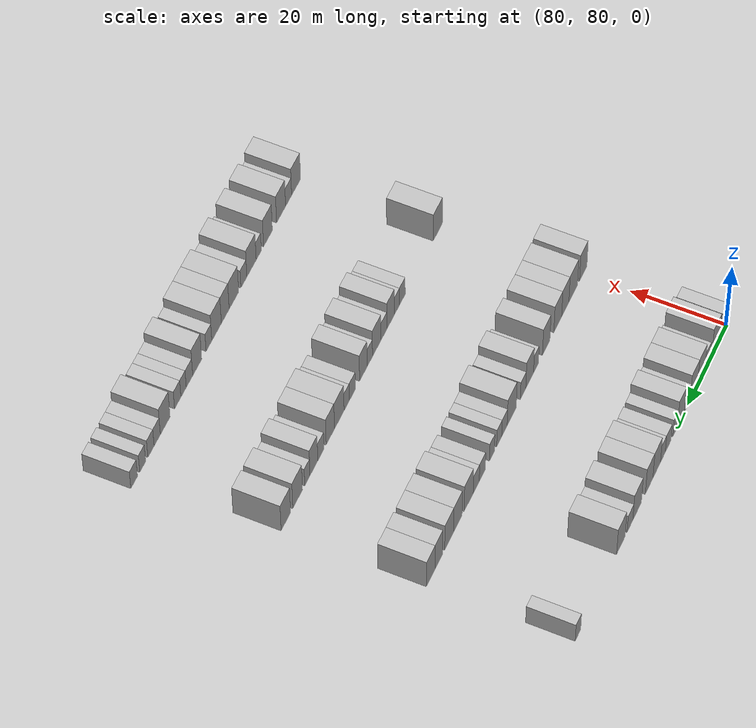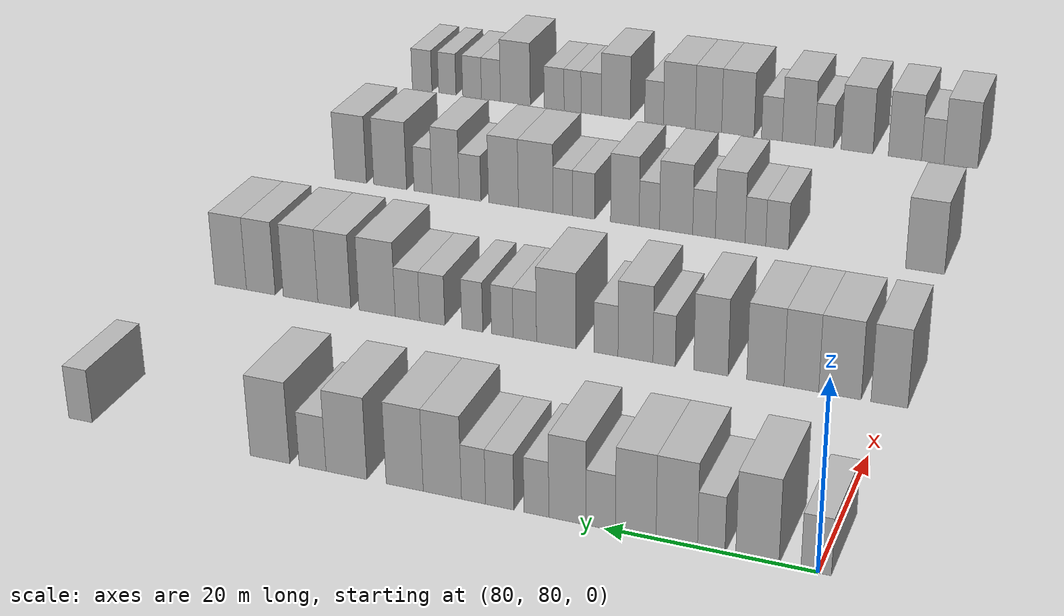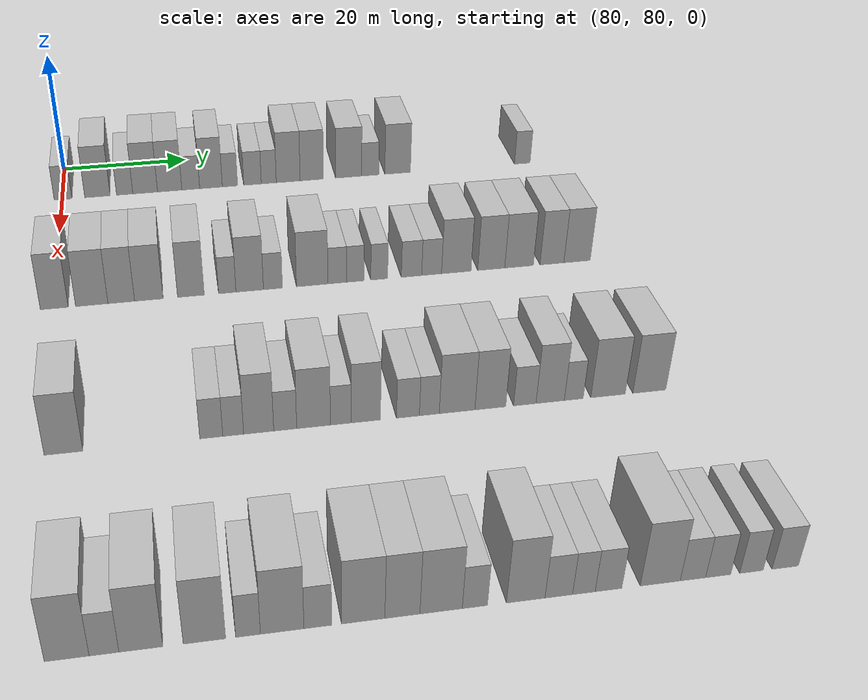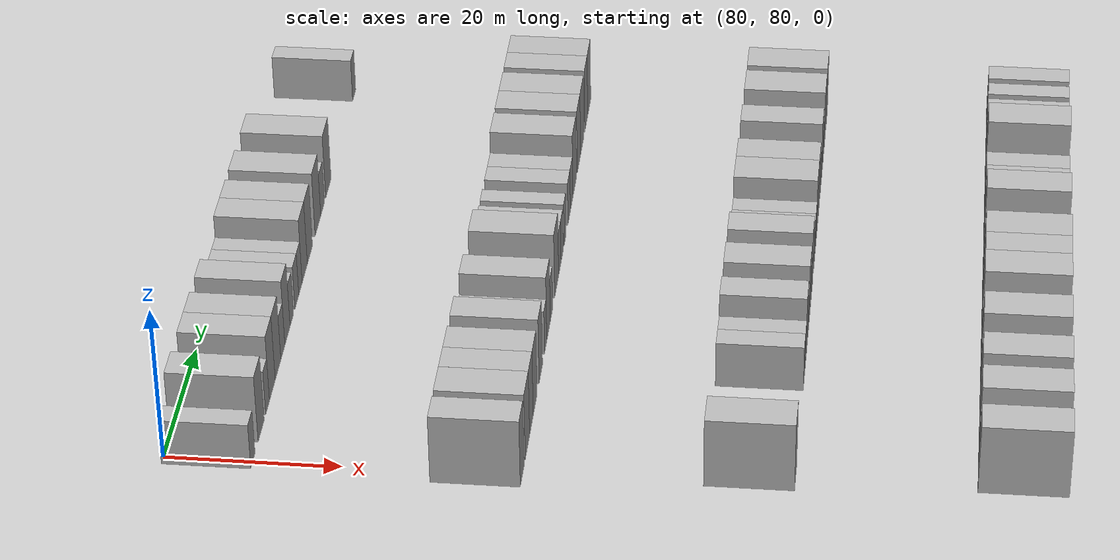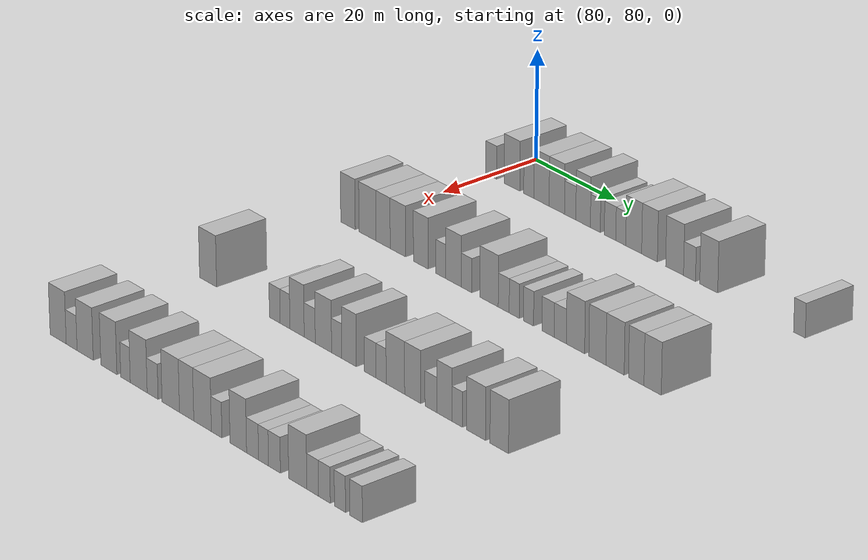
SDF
<sdf version="1.6">
 <world name="default">
  <model name="building_592">
   <static>1</static>
   <pose>85.0000 80.1887 0 0.000000 0.000000 0.000000</pose>
   <link name="link">
    <pose>0 0 3.00 0 0 0</pose>
    <collision name="collision"><geometry><box><size>10.0000 2.7611 6.0000</size></box></geometry></collision>
    <visual name="visual">
     <cast_shadows>0</cast_shadows>
     <geometry><box><size>10.0000 2.7611 6.0000</size></box></geometry>
     <material>
      <script>
       <uri>model://HANNAS_wall/materials/scripts</uri>
       <uri>model://HANNAS_wall/materials/textures</uri>
       <name>vrc/HANNAS_wall</name>
      </script>
     </material>
    </visual>
   </link>
  </model>
  <model name="building_593">
   <static>1</static>
   <pose>85.0000 85.5621 0 0.000000 0.000000 0.000000</pose>
   <link name="link">
    <pose>0 0 4.50 0 0 0</pose>
    <collision name="collision"><geometry><box><size>10.0000 3.9857 9.0000</size></box></geometry></collision>
    <visual name="visual">
     <cast_shadows>0</cast_shadows>
     <geometry><box><size>10.0000 3.9857 9.0000</size></box></geometry>
     <material>
      <script>
       <uri>model://HANNAS_wall/materials/scripts</uri>
       <uri>model://HANNAS_wall/materials/textures</uri>
       <name>vrc/HANNAS_wall</name>
      </script>
     </material>
    </visual>
   </link>
  </model>
  <model name="building_594">
   <static>1</static>
   <pose>85.0000 89.8380 0 0.000000 0.000000 0.000000</pose>
   <link name="link">
    <pose>0 0 3.00 0 0 0</pose>
    <collision name="collision"><geometry><box><size>10.0000 2.5661 6.0000</size></box></geometry></collision>
    <visual name="visual">
     <cast_shadows>0</cast_shadows>
     <geometry><box><size>10.0000 2.5661 6.0000</size></box></geometry>
     <material>
      <script>
       <uri>model://HANNAS_wall/materials/scripts</uri>
       <uri>model://HANNAS_wall/materials/textures</uri>
       <name>vrc/HANNAS_wall</name>
      </script>
     </material>
    </visual>
   </link>
  </model>
  <model name="building_595">
   <static>1</static>
   <pose>85.0000 93.0748 0 0.000000 0.000000 0.000000</pose>
   <link name="link">
    <pose>0 0 4.50 0 0 0</pose>
    <collision name="collision"><geometry><box><size>10.0000 3.9076 9.0000</size></box></geometry></collision>
    <visual name="visual">
     <cast_shadows>0</cast_shadows>
     <geometry><box><size>10.0000 3.9076 9.0000</size></box></geometry>
     <material>
      <script>
       <uri>model://HANNAS_wall/materials/scripts</uri>
       <uri>model://HANNAS_wall/materials/textures</uri>
       <name>vrc/HANNAS_wall</name>
      </script>
     </material>
    </visual>
   </link>
  </model>
  <model name="building_596">
   <static>1</static>
   <pose>85.0000 96.9683 0 0.000000 0.000000 0.000000</pose>
   <link name="link">
    <pose>0 0 4.50 0 0 0</pose>
    <collision name="collision"><geometry><box><size>10.0000 3.8795 9.0000</size></box></geometry></collision>
    <visual name="visual">
     <cast_shadows>0</cast_shadows>
     <geometry><box><size>10.0000 3.8795 9.0000</size></box></geometry>
     <material>
      <script>
       <uri>model://HANNAS_wall/materials/scripts</uri>
       <uri>model://HANNAS_wall/materials/textures</uri>
       <name>vrc/HANNAS_wall</name>
      </script>
     </material>
    </visual>
   </link>
  </model>
  <model name="building_597">
   <static>1</static>
   <pose>85.0000 100.3293 0 0.000000 0.000000 0.000000</pose>
   <link name="link">
    <pose>0 0 3.00 0 0 0</pose>
    <collision name="collision"><geometry><box><size>10.0000 2.8423 6.0000</size></box></geometry></collision>
    <visual name="visual">
     <cast_shadows>0</cast_shadows>
     <geometry><box><size>10.0000 2.8423 6.0000</size></box></geometry>
     <material>
      <script>
       <uri>model://HANNAS_wall/materials/scripts</uri>
       <uri>model://HANNAS_wall/materials/textures</uri>
       <name>vrc/HANNAS_wall</name>
      </script>
     </material>
    </visual>
   </link>
  </model>
  <model name="building_598">
   <static>1</static>
   <pose>85.0000 103.5704 0 0.000000 0.000000 0.000000</pose>
   <link name="link">
    <pose>0 0 4.50 0 0 0</pose>
    <collision name="collision"><geometry><box><size>10.0000 3.6400 9.0000</size></box></geometry></collision>
    <visual name="visual">
     <cast_shadows>0</cast_shadows>
     <geometry><box><size>10.0000 3.6400 9.0000</size></box></geometry>
     <material>
      <script>
       <uri>model://HANNAS_wall/materials/scripts</uri>
       <uri>model://HANNAS_wall/materials/textures</uri>
       <name>vrc/HANNAS_wall</name>
      </script>
     </material>
    </visual>
   </link>
  </model>
  <model name="building_599">
   <static>1</static>
   <pose>85.0000 106.6179 0 0.000000 0.000000 0.000000</pose>
   <link name="link">
    <pose>0 0 3.00 0 0 0</pose>
    <collision name="collision"><geometry><box><size>10.0000 2.4550 6.0000</size></box></geometry></collision>
    <visual name="visual">
     <cast_shadows>0</cast_shadows>
     <geometry><box><size>10.0000 2.4550 6.0000</size></box></geometry>
     <material>
      <script>
       <uri>model://HANNAS_wall/materials/scripts</uri>
       <uri>model://HANNAS_wall/materials/textures</uri>
       <name>vrc/HANNAS_wall</name>
      </script>
     </material>
    </visual>
   </link>
  </model>
  <model name="building_600">
   <static>1</static>
   <pose>85.0000 110.2648 0 0.000000 0.000000 0.000000</pose>
   <link name="link">
    <pose>0 0 3.00 0 0 0</pose>
    <collision name="collision"><geometry><box><size>10.0000 2.8389 6.0000</size></box></geometry></collision>
    <visual name="visual">
     <cast_shadows>0</cast_shadows>
     <geometry><box><size>10.0000 2.8389 6.0000</size></box></geometry>
     <material>
      <script>
       <uri>model://HANNAS_wall/materials/scripts</uri>
       <uri>model://HANNAS_wall/materials/textures</uri>
       <name>vrc/HANNAS_wall</name>
      </script>
     </material>
    </visual>
   </link>
  </model>
  <model name="building_601">
   <static>1</static>
   <pose>85.0000 112.9019 0 0.000000 0.000000 0.000000</pose>
   <link name="link">
    <pose>0 0 3.00 0 0 0</pose>
    <collision name="collision"><geometry><box><size>10.0000 2.4353 6.0000</size></box></geometry></collision>
    <visual name="visual">
     <cast_shadows>0</cast_shadows>
     <geometry><box><size>10.0000 2.4353 6.0000</size></box></geometry>
     <material>
      <script>
       <uri>model://HANNAS_wall/materials/scripts</uri>
       <uri>model://HANNAS_wall/materials/textures</uri>
       <name>vrc/HANNAS_wall</name>
      </script>
     </material>
    </visual>
   </link>
  </model>
  <model name="building_602">
   <static>1</static>
   <pose>85.0000 116.0676 0 0.000000 0.000000 0.000000</pose>
   <link name="link">
    <pose>0 0 4.50 0 0 0</pose>
    <collision name="collision"><geometry><box><size>10.0000 3.8962 9.0000</size></box></geometry></collision>
    <visual name="visual">
     <cast_shadows>0</cast_shadows>
     <geometry><box><size>10.0000 3.8962 9.0000</size></box></geometry>
     <material>
      <script>
       <uri>model://HANNAS_wall/materials/scripts</uri>
       <uri>model://HANNAS_wall/materials/textures</uri>
       <name>vrc/HANNAS_wall</name>
      </script>
     </material>
    </visual>
   </link>
  </model>
  <model name="building_603">
   <static>1</static>
   <pose>85.0000 119.9286 0 0.000000 0.000000 0.000000</pose>
   <link name="link">
    <pose>0 0 4.50 0 0 0</pose>
    <collision name="collision"><geometry><box><size>10.0000 3.8258 9.0000</size></box></geometry></collision>
    <visual name="visual">
     <cast_shadows>0</cast_shadows>
     <geometry><box><size>10.0000 3.8258 9.0000</size></box></geometry>
     <material>
      <script>
       <uri>model://HANNAS_wall/materials/scripts</uri>
       <uri>model://HANNAS_wall/materials/textures</uri>
       <name>vrc/HANNAS_wall</name>
      </script>
     </material>
    </visual>
   </link>
  </model>
  <model name="building_604">
   <static>1</static>
   <pose>85.0000 125.9914 0 0.000000 0.000000 0.000000</pose>
   <link name="link">
    <pose>0 0 4.50 0 0 0</pose>
    <collision name="collision"><geometry><box><size>10.0000 4.2998 9.0000</size></box></geometry></collision>
    <visual name="visual">
     <cast_shadows>0</cast_shadows>
     <geometry><box><size>10.0000 4.2998 9.0000</size></box></geometry>
     <material>
      <script>
       <uri>model://HANNAS_wall/materials/scripts</uri>
       <uri>model://HANNAS_wall/materials/textures</uri>
       <name>vrc/HANNAS_wall</name>
      </script>
     </material>
    </visual>
   </link>
  </model>
  <model name="building_605">
   <static>1</static>
   <pose>85.0000 129.5730 0 0.000000 0.000000 0.000000</pose>
   <link name="link">
    <pose>0 0 3.00 0 0 0</pose>
    <collision name="collision"><geometry><box><size>10.0000 2.8633 6.0000</size></box></geometry></collision>
    <visual name="visual">
     <cast_shadows>0</cast_shadows>
     <geometry><box><size>10.0000 2.8633 6.0000</size></box></geometry>
     <material>
      <script>
       <uri>model://HANNAS_wall/materials/scripts</uri>
       <uri>model://HANNAS_wall/materials/textures</uri>
       <name>vrc/HANNAS_wall</name>
      </script>
     </material>
    </visual>
   </link>
  </model>
  <model name="building_606">
   <static>1</static>
   <pose>85.0000 134.1371 0 0.000000 0.000000 0.000000</pose>
   <link name="link">
    <pose>0 0 4.50 0 0 0</pose>
    <collision name="collision"><geometry><box><size>10.0000 4.2650 9.0000</size></box></geometry></collision>
    <visual name="visual">
     <cast_shadows>0</cast_shadows>
     <geometry><box><size>10.0000 4.2650 9.0000</size></box></geometry>
     <material>
      <script>
       <uri>model://HANNAS_wall/materials/scripts</uri>
       <uri>model://HANNAS_wall/materials/textures</uri>
       <name>vrc/HANNAS_wall</name>
      </script>
     </material>
    </visual>
   </link>
  </model>
  <model name="building_607">
   <static>1</static>
   <pose>85.0000 155.2756 0 0.000000 0.000000 0.000000</pose>
   <link name="link">
    <pose>0 0 3.00 0 0 0</pose>
    <collision name="collision"><geometry><box><size>10.0000 2.6707 6.0000</size></box></geometry></collision>
    <visual name="visual">
     <cast_shadows>0</cast_shadows>
     <geometry><box><size>10.0000 2.6707 6.0000</size></box></geometry>
     <material>
      <script>
       <uri>model://HANNAS_wall/materials/scripts</uri>
       <uri>model://HANNAS_wall/materials/textures</uri>
       <name>vrc/HANNAS_wall</name>
      </script>
     </material>
    </visual>
   </link>
  </model>
  <model name="building_820">
   <static>1</static>
   <pose>115.0000 80.0502 0 0.000000 0.000000 0.000000</pose>
   <link name="link">
    <pose>0 0 4.50 0 0 0</pose>
    <collision name="collision"><geometry><box><size>10.0000 3.7829 9.0000</size></box></geometry></collision>
    <visual name="visual">
     <cast_shadows>0</cast_shadows>
     <geometry><box><size>10.0000 3.7829 9.0000</size></box></geometry>
     <material>
      <script>
       <uri>model://HANNAS_wall/materials/scripts</uri>
       <uri>model://HANNAS_wall/materials/textures</uri>
       <name>vrc/HANNAS_wall</name>
      </script>
     </material>
    </visual>
   </link>
  </model>
  <model name="building_821">
   <static>1</static>
   <pose>115.0000 85.1483 0 0.000000 0.000000 0.000000</pose>
   <link name="link">
    <pose>0 0 4.50 0 0 0</pose>
    <collision name="collision"><geometry><box><size>10.0000 4.4133 9.0000</size></box></geometry></collision>
    <visual name="visual">
     <cast_shadows>0</cast_shadows>
     <geometry><box><size>10.0000 4.4133 9.0000</size></box></geometry>
     <material>
      <script>
       <uri>model://HANNAS_wall/materials/scripts</uri>
       <uri>model://HANNAS_wall/materials/textures</uri>
       <name>vrc/HANNAS_wall</name>
      </script>
     </material>
    </visual>
   </link>
  </model>
  <model name="building_822">
   <static>1</static>
   <pose>115.0000 89.1841 0 0.000000 0.000000 0.000000</pose>
   <link name="link">
    <pose>0 0 4.50 0 0 0</pose>
    <collision name="collision"><geometry><box><size>10.0000 3.6582 9.0000</size></box></geometry></collision>
    <visual name="visual">
     <cast_shadows>0</cast_shadows>
     <geometry><box><size>10.0000 3.6582 9.0000</size></box></geometry>
     <material>
      <script>
       <uri>model://HANNAS_wall/materials/scripts</uri>
       <uri>model://HANNAS_wall/materials/textures</uri>
       <name>vrc/HANNAS_wall</name>
      </script>
     </material>
    </visual>
   </link>
  </model>
  <model name="building_823">
   <static>1</static>
   <pose>115.0000 92.9881 0 0.000000 0.000000 0.000000</pose>
   <link name="link">
    <pose>0 0 4.50 0 0 0</pose>
    <collision name="collision"><geometry><box><size>10.0000 3.9498 9.0000</size></box></geometry></collision>
    <visual name="visual">
     <cast_shadows>0</cast_shadows>
     <geometry><box><size>10.0000 3.9498 9.0000</size></box></geometry>
     <material>
      <script>
       <uri>model://HANNAS_wall/materials/scripts</uri>
       <uri>model://HANNAS_wall/materials/textures</uri>
       <name>vrc/HANNAS_wall</name>
      </script>
     </material>
    </visual>
   </link>
  </model>
  <model name="building_824">
   <static>1</static>
   <pose>115.0000 98.8246 0 0.000000 0.000000 0.000000</pose>
   <link name="link">
    <pose>0 0 4.50 0 0 0</pose>
    <collision name="collision"><geometry><box><size>10.0000 3.7233 9.0000</size></box></geometry></collision>
    <visual name="visual">
     <cast_shadows>0</cast_shadows>
     <geometry><box><size>10.0000 3.7233 9.0000</size></box></geometry>
     <material>
      <script>
       <uri>model://HANNAS_wall/materials/scripts</uri>
       <uri>model://HANNAS_wall/materials/textures</uri>
       <name>vrc/HANNAS_wall</name>
      </script>
     </material>
    </visual>
   </link>
  </model>
  <model name="building_825">
   <static>1</static>
   <pose>115.0000 103.9093 0 0.000000 0.000000 0.000000</pose>
   <link name="link">
    <pose>0 0 3.00 0 0 0</pose>
    <collision name="collision"><geometry><box><size>10.0000 2.4461 6.0000</size></box></geometry></collision>
    <visual name="visual">
     <cast_shadows>0</cast_shadows>
     <geometry><box><size>10.0000 2.4461 6.0000</size></box></geometry>
     <material>
      <script>
       <uri>model://HANNAS_wall/materials/scripts</uri>
       <uri>model://HANNAS_wall/materials/textures</uri>
       <name>vrc/HANNAS_wall</name>
      </script>
     </material>
    </visual>
   </link>
  </model>
  <model name="building_826">
   <static>1</static>
   <pose>115.0000 107.0708 0 0.000000 0.000000 0.000000</pose>
   <link name="link">
    <pose>0 0 4.50 0 0 0</pose>
    <collision name="collision"><geometry><box><size>10.0000 3.8767 9.0000</size></box></geometry></collision>
    <visual name="visual">
     <cast_shadows>0</cast_shadows>
     <geometry><box><size>10.0000 3.8767 9.0000</size></box></geometry>
     <material>
      <script>
       <uri>model://HANNAS_wall/materials/scripts</uri>
       <uri>model://HANNAS_wall/materials/textures</uri>
       <name>vrc/HANNAS_wall</name>
      </script>
     </material>
    </visual>
   </link>
  </model>
  <model name="building_827">
   <static>1</static>
   <pose>115.0000 110.3533 0 0.000000 0.000000 0.000000</pose>
   <link name="link">
    <pose>0 0 3.00 0 0 0</pose>
    <collision name="collision"><geometry><box><size>10.0000 2.6883 6.0000</size></box></geometry></collision>
    <visual name="visual">
     <cast_shadows>0</cast_shadows>
     <geometry><box><size>10.0000 2.6883 6.0000</size></box></geometry>
     <material>
      <script>
       <uri>model://HANNAS_wall/materials/scripts</uri>
       <uri>model://HANNAS_wall/materials/textures</uri>
       <name>vrc/HANNAS_wall</name>
      </script>
     </material>
    </visual>
   </link>
  </model>
  <model name="building_828">
   <static>1</static>
   <pose>115.0000 115.9446 0 0.000000 0.000000 0.000000</pose>
   <link name="link">
    <pose>0 0 4.50 0 0 0</pose>
    <collision name="collision"><geometry><box><size>10.0000 4.4944 9.0000</size></box></geometry></collision>
    <visual name="visual">
     <cast_shadows>0</cast_shadows>
     <geometry><box><size>10.0000 4.4944 9.0000</size></box></geometry>
     <material>
      <script>
       <uri>model://HANNAS_wall/materials/scripts</uri>
       <uri>model://HANNAS_wall/materials/textures</uri>
       <name>vrc/HANNAS_wall</name>
      </script>
     </material>
    </visual>
   </link>
  </model>
  <model name="building_829">
   <static>1</static>
   <pose>115.0000 119.5379 0 0.000000 0.000000 0.000000</pose>
   <link name="link">
    <pose>0 0 3.00 0 0 0</pose>
    <collision name="collision"><geometry><box><size>10.0000 2.6920 6.0000</size></box></geometry></collision>
    <visual name="visual">
     <cast_shadows>0</cast_shadows>
     <geometry><box><size>10.0000 2.6920 6.0000</size></box></geometry>
     <material>
      <script>
       <uri>model://HANNAS_wall/materials/scripts</uri>
       <uri>model://HANNAS_wall/materials/textures</uri>
       <name>vrc/HANNAS_wall</name>
      </script>
     </material>
    </visual>
   </link>
  </model>
  <model name="building_830">
   <static>1</static>
   <pose>115.0000 122.1313 0 0.000000 0.000000 0.000000</pose>
   <link name="link">
    <pose>0 0 3.00 0 0 0</pose>
    <collision name="collision"><geometry><box><size>10.0000 2.4948 6.0000</size></box></geometry></collision>
    <visual name="visual">
     <cast_shadows>0</cast_shadows>
     <geometry><box><size>10.0000 2.4948 6.0000</size></box></geometry>
     <material>
      <script>
       <uri>model://HANNAS_wall/materials/scripts</uri>
       <uri>model://HANNAS_wall/materials/textures</uri>
       <name>vrc/HANNAS_wall</name>
      </script>
     </material>
    </visual>
   </link>
  </model>
  <model name="building_831">
   <static>1</static>
   <pose>115.0000 125.6011 0 0.000000 0.000000 0.000000</pose>
   <link name="link">
    <pose>0 0 3.00 0 0 0</pose>
    <collision name="collision"><geometry><box><size>10.0000 2.4448 6.0000</size></box></geometry></collision>
    <visual name="visual">
     <cast_shadows>0</cast_shadows>
     <geometry><box><size>10.0000 2.4448 6.0000</size></box></geometry>
     <material>
      <script>
       <uri>model://HANNAS_wall/materials/scripts</uri>
       <uri>model://HANNAS_wall/materials/textures</uri>
       <name>vrc/HANNAS_wall</name>
      </script>
     </material>
    </visual>
   </link>
  </model>
  <model name="building_832">
   <static>1</static>
   <pose>115.0000 130.3121 0 0.000000 0.000000 0.000000</pose>
   <link name="link">
    <pose>0 0 3.00 0 0 0</pose>
    <collision name="collision"><geometry><box><size>10.0000 2.9773 6.0000</size></box></geometry></collision>
    <visual name="visual">
     <cast_shadows>0</cast_shadows>
     <geometry><box><size>10.0000 2.9773 6.0000</size></box></geometry>
     <material>
      <script>
       <uri>model://HANNAS_wall/materials/scripts</uri>
       <uri>model://HANNAS_wall/materials/textures</uri>
       <name>vrc/HANNAS_wall</name>
      </script>
     </material>
    </visual>
   </link>
  </model>
  <model name="building_833">
   <static>1</static>
   <pose>115.0000 133.2587 0 0.000000 0.000000 0.000000</pose>
   <link name="link">
    <pose>0 0 3.00 0 0 0</pose>
    <collision name="collision"><geometry><box><size>10.0000 2.9159 6.0000</size></box></geometry></collision>
    <visual name="visual">
     <cast_shadows>0</cast_shadows>
     <geometry><box><size>10.0000 2.9159 6.0000</size></box></geometry>
     <material>
      <script>
       <uri>model://HANNAS_wall/materials/scripts</uri>
       <uri>model://HANNAS_wall/materials/textures</uri>
       <name>vrc/HANNAS_wall</name>
      </script>
     </material>
    </visual>
   </link>
  </model>
  <model name="building_834">
   <static>1</static>
   <pose>115.0000 136.8963 0 0.000000 0.000000 0.000000</pose>
   <link name="link">
    <pose>0 0 4.50 0 0 0</pose>
    <collision name="collision"><geometry><box><size>10.0000 4.3593 9.0000</size></box></geometry></collision>
    <visual name="visual">
     <cast_shadows>0</cast_shadows>
     <geometry><box><size>10.0000 4.3593 9.0000</size></box></geometry>
     <material>
      <script>
       <uri>model://HANNAS_wall/materials/scripts</uri>
       <uri>model://HANNAS_wall/materials/textures</uri>
       <name>vrc/HANNAS_wall</name>
      </script>
     </material>
    </visual>
   </link>
  </model>
  <model name="building_835">
   <static>1</static>
   <pose>115.0000 142.0876 0 0.000000 0.000000 0.000000</pose>
   <link name="link">
    <pose>0 0 4.50 0 0 0</pose>
    <collision name="collision"><geometry><box><size>10.0000 4.0232 9.0000</size></box></geometry></collision>
    <visual name="visual">
     <cast_shadows>0</cast_shadows>
     <geometry><box><size>10.0000 4.0232 9.0000</size></box></geometry>
     <material>
      <script>
       <uri>model://HANNAS_wall/materials/scripts</uri>
       <uri>model://HANNAS_wall/materials/textures</uri>
       <name>vrc/HANNAS_wall</name>
      </script>
     </material>
    </visual>
   </link>
  </model>
  <model name="building_836">
   <static>1</static>
   <pose>115.0000 146.2387 0 0.000000 0.000000 0.000000</pose>
   <link name="link">
    <pose>0 0 4.50 0 0 0</pose>
    <collision name="collision"><geometry><box><size>10.0000 4.2790 9.0000</size></box></geometry></collision>
    <visual name="visual">
     <cast_shadows>0</cast_shadows>
     <geometry><box><size>10.0000 4.2790 9.0000</size></box></geometry>
     <material>
      <script>
       <uri>model://HANNAS_wall/materials/scripts</uri>
       <uri>model://HANNAS_wall/materials/textures</uri>
       <name>vrc/HANNAS_wall</name>
      </script>
     </material>
    </visual>
   </link>
  </model>
  <model name="building_837">
   <static>1</static>
   <pose>115.0000 151.1784 0 0.000000 0.000000 0.000000</pose>
   <link name="link">
    <pose>0 0 4.50 0 0 0</pose>
    <collision name="collision"><geometry><box><size>10.0000 3.6004 9.0000</size></box></geometry></collision>
    <visual name="visual">
     <cast_shadows>0</cast_shadows>
     <geometry><box><size>10.0000 3.6004 9.0000</size></box></geometry>
     <material>
      <script>
       <uri>model://HANNAS_wall/materials/scripts</uri>
       <uri>model://HANNAS_wall/materials/textures</uri>
       <name>vrc/HANNAS_wall</name>
      </script>
     </material>
    </visual>
   </link>
  </model>
  <model name="building_838">
   <static>1</static>
   <pose>115.0000 154.9751 0 0.000000 0.000000 0.000000</pose>
   <link name="link">
    <pose>0 0 4.50 0 0 0</pose>
    <collision name="collision"><geometry><box><size>10.0000 3.9930 9.0000</size></box></geometry></collision>
    <visual name="visual">
     <cast_shadows>0</cast_shadows>
     <geometry><box><size>10.0000 3.9930 9.0000</size></box></geometry>
     <material>
      <script>
       <uri>model://HANNAS_wall/materials/scripts</uri>
       <uri>model://HANNAS_wall/materials/textures</uri>
       <name>vrc/HANNAS_wall</name>
      </script>
     </material>
    </visual>
   </link>
  </model>
  <model name="building_1046">
   <static>1</static>
   <pose>145.0000 82.3464 0 0.000000 0.000000 0.000000</pose>
   <link name="link">
    <pose>0 0 4.50 0 0 0</pose>
    <collision name="collision"><geometry><box><size>10.0000 4.4907 9.0000</size></box></geometry></collision>
    <visual name="visual">
     <cast_shadows>0</cast_shadows>
     <geometry><box><size>10.0000 4.4907 9.0000</size></box></geometry>
     <material>
      <script>
       <uri>model://HANNAS_wall/materials/scripts</uri>
       <uri>model://HANNAS_wall/materials/textures</uri>
       <name>vrc/HANNAS_wall</name>
      </script>
     </material>
    </visual>
   </link>
  </model>
  <model name="building_1047">
   <static>1</static>
   <pose>145.0000 99.7230 0 0.000000 0.000000 0.000000</pose>
   <link name="link">
    <pose>0 0 3.00 0 0 0</pose>
    <collision name="collision"><geometry><box><size>10.0000 2.7541 6.0000</size></box></geometry></collision>
    <visual name="visual">
     <cast_shadows>0</cast_shadows>
     <geometry><box><size>10.0000 2.7541 6.0000</size></box></geometry>
     <material>
      <script>
       <uri>model://HANNAS_wall/materials/scripts</uri>
       <uri>model://HANNAS_wall/materials/textures</uri>
       <name>vrc/HANNAS_wall</name>
      </script>
     </material>
    </visual>
   </link>
  </model>
  <model name="building_1048">
   <static>1</static>
   <pose>145.0000 102.3485 0 0.000000 0.000000 0.000000</pose>
   <link name="link">
    <pose>0 0 3.00 0 0 0</pose>
    <collision name="collision"><geometry><box><size>10.0000 2.4969 6.0000</size></box></geometry></collision>
    <visual name="visual">
     <cast_shadows>0</cast_shadows>
     <geometry><box><size>10.0000 2.4969 6.0000</size></box></geometry>
     <material>
      <script>
       <uri>model://HANNAS_wall/materials/scripts</uri>
       <uri>model://HANNAS_wall/materials/textures</uri>
       <name>vrc/HANNAS_wall</name>
      </script>
     </material>
    </visual>
   </link>
  </model>
  <model name="building_1049">
   <static>1</static>
   <pose>145.0000 105.4116 0 0.000000 0.000000 0.000000</pose>
   <link name="link">
    <pose>0 0 4.50 0 0 0</pose>
    <collision name="collision"><geometry><box><size>10.0000 3.6292 9.0000</size></box></geometry></collision>
    <visual name="visual">
     <cast_shadows>0</cast_shadows>
     <geometry><box><size>10.0000 3.6292 9.0000</size></box></geometry>
     <material>
      <script>
       <uri>model://HANNAS_wall/materials/scripts</uri>
       <uri>model://HANNAS_wall/materials/textures</uri>
       <name>vrc/HANNAS_wall</name>
      </script>
     </material>
    </visual>
   </link>
  </model>
  <model name="building_1050">
   <static>1</static>
   <pose>145.0000 108.6205 0 0.000000 0.000000 0.000000</pose>
   <link name="link">
    <pose>0 0 3.00 0 0 0</pose>
    <collision name="collision"><geometry><box><size>10.0000 2.7885 6.0000</size></box></geometry></collision>
    <visual name="visual">
     <cast_shadows>0</cast_shadows>
     <geometry><box><size>10.0000 2.7885 6.0000</size></box></geometry>
     <material>
      <script>
       <uri>model://HANNAS_wall/materials/scripts</uri>
       <uri>model://HANNAS_wall/materials/textures</uri>
       <name>vrc/HANNAS_wall</name>
      </script>
     </material>
    </visual>
   </link>
  </model>
  <model name="building_1051">
   <static>1</static>
   <pose>145.0000 112.0683 0 0.000000 0.000000 0.000000</pose>
   <link name="link">
    <pose>0 0 4.50 0 0 0</pose>
    <collision name="collision"><geometry><box><size>10.0000 4.1071 9.0000</size></box></geometry></collision>
    <visual name="visual">
     <cast_shadows>0</cast_shadows>
     <geometry><box><size>10.0000 4.1071 9.0000</size></box></geometry>
     <material>
      <script>
       <uri>model://HANNAS_wall/materials/scripts</uri>
       <uri>model://HANNAS_wall/materials/textures</uri>
       <name>vrc/HANNAS_wall</name>
      </script>
     </material>
    </visual>
   </link>
  </model>
  <model name="building_1052">
   <static>1</static>
   <pose>145.0000 115.3946 0 0.000000 0.000000 0.000000</pose>
   <link name="link">
    <pose>0 0 3.00 0 0 0</pose>
    <collision name="collision"><geometry><box><size>10.0000 2.5456 6.0000</size></box></geometry></collision>
    <visual name="visual">
     <cast_shadows>0</cast_shadows>
     <geometry><box><size>10.0000 2.5456 6.0000</size></box></geometry>
     <material>
      <script>
       <uri>model://HANNAS_wall/materials/scripts</uri>
       <uri>model://HANNAS_wall/materials/textures</uri>
       <name>vrc/HANNAS_wall</name>
      </script>
     </material>
    </visual>
   </link>
  </model>
  <model name="building_1053">
   <static>1</static>
   <pose>145.0000 118.4745 0 0.000000 0.000000 0.000000</pose>
   <link name="link">
    <pose>0 0 4.50 0 0 0</pose>
    <collision name="collision"><geometry><box><size>10.0000 3.6142 9.0000</size></box></geometry></collision>
    <visual name="visual">
     <cast_shadows>0</cast_shadows>
     <geometry><box><size>10.0000 3.6142 9.0000</size></box></geometry>
     <material>
      <script>
       <uri>model://HANNAS_wall/materials/scripts</uri>
       <uri>model://HANNAS_wall/materials/textures</uri>
       <name>vrc/HANNAS_wall</name>
      </script>
     </material>
    </visual>
   </link>
  </model>
  <model name="building_1054">
   <static>1</static>
   <pose>145.0000 123.7107 0 0.000000 0.000000 0.000000</pose>
   <link name="link">
    <pose>0 0 3.00 0 0 0</pose>
    <collision name="collision"><geometry><box><size>10.0000 2.8582 6.0000</size></box></geometry></collision>
    <visual name="visual">
     <cast_shadows>0</cast_shadows>
     <geometry><box><size>10.0000 2.8582 6.0000</size></box></geometry>
     <material>
      <script>
       <uri>model://HANNAS_wall/materials/scripts</uri>
       <uri>model://HANNAS_wall/materials/textures</uri>
       <name>vrc/HANNAS_wall</name>
      </script>
     </material>
    </visual>
   </link>
  </model>
  <model name="building_1055">
   <static>1</static>
   <pose>145.0000 126.3846 0 0.000000 0.000000 0.000000</pose>
   <link name="link">
    <pose>0 0 3.00 0 0 0</pose>
    <collision name="collision"><geometry><box><size>10.0000 2.4895 6.0000</size></box></geometry></collision>
    <visual name="visual">
     <cast_shadows>0</cast_shadows>
     <geometry><box><size>10.0000 2.4895 6.0000</size></box></geometry>
     <material>
      <script>
       <uri>model://HANNAS_wall/materials/scripts</uri>
       <uri>model://HANNAS_wall/materials/textures</uri>
       <name>vrc/HANNAS_wall</name>
      </script>
     </material>
    </visual>
   </link>
  </model>
  <model name="building_1056">
   <static>1</static>
   <pose>145.0000 129.8785 0 0.000000 0.000000 0.000000</pose>
   <link name="link">
    <pose>0 0 4.50 0 0 0</pose>
    <collision name="collision"><geometry><box><size>10.0000 4.4983 9.0000</size></box></geometry></collision>
    <visual name="visual">
     <cast_shadows>0</cast_shadows>
     <geometry><box><size>10.0000 4.4983 9.0000</size></box></geometry>
     <material>
      <script>
       <uri>model://HANNAS_wall/materials/scripts</uri>
       <uri>model://HANNAS_wall/materials/textures</uri>
       <name>vrc/HANNAS_wall</name>
      </script>
     </material>
    </visual>
   </link>
  </model>
  <model name="building_1057">
   <static>1</static>
   <pose>145.0000 134.0840 0 0.000000 0.000000 0.000000</pose>
   <link name="link">
    <pose>0 0 4.50 0 0 0</pose>
    <collision name="collision"><geometry><box><size>10.0000 3.9128 9.0000</size></box></geometry></collision>
    <visual name="visual">
     <cast_shadows>0</cast_shadows>
     <geometry><box><size>10.0000 3.9128 9.0000</size></box></geometry>
     <material>
      <script>
       <uri>model://HANNAS_wall/materials/scripts</uri>
       <uri>model://HANNAS_wall/materials/textures</uri>
       <name>vrc/HANNAS_wall</name>
      </script>
     </material>
    </visual>
   </link>
  </model>
  <model name="building_1058">
   <static>1</static>
   <pose>145.0000 138.4781 0 0.000000 0.000000 0.000000</pose>
   <link name="link">
    <pose>0 0 3.00 0 0 0</pose>
    <collision name="collision"><geometry><box><size>10.0000 2.8754 6.0000</size></box></geometry></collision>
    <visual name="visual">
     <cast_shadows>0</cast_shadows>
     <geometry><box><size>10.0000 2.8754 6.0000</size></box></geometry>
     <material>
      <script>
       <uri>model://HANNAS_wall/materials/scripts</uri>
       <uri>model://HANNAS_wall/materials/textures</uri>
       <name>vrc/HANNAS_wall</name>
      </script>
     </material>
    </visual>
   </link>
  </model>
  <model name="building_1059">
   <static>1</static>
   <pose>145.0000 141.7375 0 0.000000 0.000000 0.000000</pose>
   <link name="link">
    <pose>0 0 4.50 0 0 0</pose>
    <collision name="collision"><geometry><box><size>10.0000 3.6435 9.0000</size></box></geometry></collision>
    <visual name="visual">
     <cast_shadows>0</cast_shadows>
     <geometry><box><size>10.0000 3.6435 9.0000</size></box></geometry>
     <material>
      <script>
       <uri>model://HANNAS_wall/materials/scripts</uri>
       <uri>model://HANNAS_wall/materials/textures</uri>
       <name>vrc/HANNAS_wall</name>
      </script>
     </material>
    </visual>
   </link>
  </model>
  <model name="building_1060">
   <static>1</static>
   <pose>145.0000 144.7737 0 0.000000 0.000000 0.000000</pose>
   <link name="link">
    <pose>0 0 3.00 0 0 0</pose>
    <collision name="collision"><geometry><box><size>10.0000 2.4287 6.0000</size></box></geometry></collision>
    <visual name="visual">
     <cast_shadows>0</cast_shadows>
     <geometry><box><size>10.0000 2.4287 6.0000</size></box></geometry>
     <material>
      <script>
       <uri>model://HANNAS_wall/materials/scripts</uri>
       <uri>model://HANNAS_wall/materials/textures</uri>
       <name>vrc/HANNAS_wall</name>
      </script>
     </material>
    </visual>
   </link>
  </model>
  <model name="building_1061">
   <static>1</static>
   <pose>145.0000 149.2299 0 0.000000 0.000000 0.000000</pose>
   <link name="link">
    <pose>0 0 4.50 0 0 0</pose>
    <collision name="collision"><geometry><box><size>10.0000 4.4837 9.0000</size></box></geometry></collision>
    <visual name="visual">
     <cast_shadows>0</cast_shadows>
     <geometry><box><size>10.0000 4.4837 9.0000</size></box></geometry>
     <material>
      <script>
       <uri>model://HANNAS_wall/materials/scripts</uri>
       <uri>model://HANNAS_wall/materials/textures</uri>
       <name>vrc/HANNAS_wall</name>
      </script>
     </material>
    </visual>
   </link>
  </model>
  <model name="building_1062">
   <static>1</static>
   <pose>145.0000 154.6370 0 0.000000 0.000000 0.000000</pose>
   <link name="link">
    <pose>0 0 4.50 0 0 0</pose>
    <collision name="collision"><geometry><box><size>10.0000 4.3305 9.0000</size></box></geometry></collision>
    <visual name="visual">
     <cast_shadows>0</cast_shadows>
     <geometry><box><size>10.0000 4.3305 9.0000</size></box></geometry>
     <material>
      <script>
       <uri>model://HANNAS_wall/materials/scripts</uri>
       <uri>model://HANNAS_wall/materials/textures</uri>
       <name>vrc/HANNAS_wall</name>
      </script>
     </material>
    </visual>
   </link>
  </model>
  <model name="building_1268">
   <static>1</static>
   <pose>175.0000 83.6960 0 0.000000 0.000000 0.000000</pose>
   <link name="link">
    <pose>0 0 4.50 0 0 0</pose>
    <collision name="collision"><geometry><box><size>10.0000 4.3014 9.0000</size></box></geometry></collision>
    <visual name="visual">
     <cast_shadows>0</cast_shadows>
     <geometry><box><size>10.0000 4.3014 9.0000</size></box></geometry>
     <material>
      <script>
       <uri>model://HANNAS_wall/materials/scripts</uri>
       <uri>model://HANNAS_wall/materials/textures</uri>
       <name>vrc/HANNAS_wall</name>
      </script>
     </material>
    </visual>
   </link>
  </model>
  <model name="building_1269">
   <static>1</static>
   <pose>175.0000 87.2863 0 0.000000 0.000000 0.000000</pose>
   <link name="link">
    <pose>0 0 3.00 0 0 0</pose>
    <collision name="collision"><geometry><box><size>10.0000 2.8792 6.0000</size></box></geometry></collision>
    <visual name="visual">
     <cast_shadows>0</cast_shadows>
     <geometry><box><size>10.0000 2.8792 6.0000</size></box></geometry>
     <material>
      <script>
       <uri>model://HANNAS_wall/materials/scripts</uri>
       <uri>model://HANNAS_wall/materials/textures</uri>
       <name>vrc/HANNAS_wall</name>
      </script>
     </material>
    </visual>
   </link>
  </model>
  <model name="building_1270">
   <static>1</static>
   <pose>175.0000 90.8673 0 0.000000 0.000000 0.000000</pose>
   <link name="link">
    <pose>0 0 4.50 0 0 0</pose>
    <collision name="collision"><geometry><box><size>10.0000 4.2827 9.0000</size></box></geometry></collision>
    <visual name="visual">
     <cast_shadows>0</cast_shadows>
     <geometry><box><size>10.0000 4.2827 9.0000</size></box></geometry>
     <material>
      <script>
       <uri>model://HANNAS_wall/materials/scripts</uri>
       <uri>model://HANNAS_wall/materials/textures</uri>
       <name>vrc/HANNAS_wall</name>
      </script>
     </material>
    </visual>
   </link>
  </model>
  <model name="building_1271">
   <static>1</static>
   <pose>175.0000 97.1014 0 0.000000 0.000000 0.000000</pose>
   <link name="link">
    <pose>0 0 4.50 0 0 0</pose>
    <collision name="collision"><geometry><box><size>10.0000 4.1856 9.0000</size></box></geometry></collision>
    <visual name="visual">
     <cast_shadows>0</cast_shadows>
     <geometry><box><size>10.0000 4.1856 9.0000</size></box></geometry>
     <material>
      <script>
       <uri>model://HANNAS_wall/materials/scripts</uri>
       <uri>model://HANNAS_wall/materials/textures</uri>
       <name>vrc/HANNAS_wall</name>
      </script>
     </material>
    </visual>
   </link>
  </model>
  <model name="building_1272">
   <static>1</static>
   <pose>175.0000 101.4274 0 0.000000 0.000000 0.000000</pose>
   <link name="link">
    <pose>0 0 3.00 0 0 0</pose>
    <collision name="collision"><geometry><box><size>10.0000 2.4663 6.0000</size></box></geometry></collision>
    <visual name="visual">
     <cast_shadows>0</cast_shadows>
     <geometry><box><size>10.0000 2.4663 6.0000</size></box></geometry>
     <material>
      <script>
       <uri>model://HANNAS_wall/materials/scripts</uri>
       <uri>model://HANNAS_wall/materials/textures</uri>
       <name>vrc/HANNAS_wall</name>
      </script>
     </material>
    </visual>
   </link>
  </model>
  <model name="building_1273">
   <static>1</static>
   <pose>175.0000 104.8427 0 0.000000 0.000000 0.000000</pose>
   <link name="link">
    <pose>0 0 4.50 0 0 0</pose>
    <collision name="collision"><geometry><box><size>10.0000 4.3642 9.0000</size></box></geometry></collision>
    <visual name="visual">
     <cast_shadows>0</cast_shadows>
     <geometry><box><size>10.0000 4.3642 9.0000</size></box></geometry>
     <material>
      <script>
       <uri>model://HANNAS_wall/materials/scripts</uri>
       <uri>model://HANNAS_wall/materials/textures</uri>
       <name>vrc/HANNAS_wall</name>
      </script>
     </material>
    </visual>
   </link>
  </model>
  <model name="building_1274">
   <static>1</static>
   <pose>175.0000 108.4276 0 0.000000 0.000000 0.000000</pose>
   <link name="link">
    <pose>0 0 3.00 0 0 0</pose>
    <collision name="collision"><geometry><box><size>10.0000 2.8058 6.0000</size></box></geometry></collision>
    <visual name="visual">
     <cast_shadows>0</cast_shadows>
     <geometry><box><size>10.0000 2.8058 6.0000</size></box></geometry>
     <material>
      <script>
       <uri>model://HANNAS_wall/materials/scripts</uri>
       <uri>model://HANNAS_wall/materials/textures</uri>
       <name>vrc/HANNAS_wall</name>
      </script>
     </material>
    </visual>
   </link>
  </model>
  <model name="building_1275">
   <static>1</static>
   <pose>175.0000 113.0442 0 0.000000 0.000000 0.000000</pose>
   <link name="link">
    <pose>0 0 4.50 0 0 0</pose>
    <collision name="collision"><geometry><box><size>10.0000 4.4273 9.0000</size></box></geometry></collision>
    <visual name="visual">
     <cast_shadows>0</cast_shadows>
     <geometry><box><size>10.0000 4.4273 9.0000</size></box></geometry>
     <material>
      <script>
       <uri>model://HANNAS_wall/materials/scripts</uri>
       <uri>model://HANNAS_wall/materials/textures</uri>
       <name>vrc/HANNAS_wall</name>
      </script>
     </material>
    </visual>
   </link>
  </model>
  <model name="building_1276">
   <static>1</static>
   <pose>175.0000 117.0673 0 0.000000 0.000000 0.000000</pose>
   <link name="link">
    <pose>0 0 4.50 0 0 0</pose>
    <collision name="collision"><geometry><box><size>10.0000 3.6190 9.0000</size></box></geometry></collision>
    <visual name="visual">
     <cast_shadows>0</cast_shadows>
     <geometry><box><size>10.0000 3.6190 9.0000</size></box></geometry>
     <material>
      <script>
       <uri>model://HANNAS_wall/materials/scripts</uri>
       <uri>model://HANNAS_wall/materials/textures</uri>
       <name>vrc/HANNAS_wall</name>
      </script>
     </material>
    </visual>
   </link>
  </model>
  <model name="building_1277">
   <static>1</static>
   <pose>175.0000 121.0801 0 0.000000 0.000000 0.000000</pose>
   <link name="link">
    <pose>0 0 4.50 0 0 0</pose>
    <collision name="collision"><geometry><box><size>10.0000 4.4066 9.0000</size></box></geometry></collision>
    <visual name="visual">
     <cast_shadows>0</cast_shadows>
     <geometry><box><size>10.0000 4.4066 9.0000</size></box></geometry>
     <material>
      <script>
       <uri>model://HANNAS_wall/materials/scripts</uri>
       <uri>model://HANNAS_wall/materials/textures</uri>
       <name>vrc/HANNAS_wall</name>
      </script>
     </material>
    </visual>
   </link>
  </model>
  <model name="building_1278">
   <static>1</static>
   <pose>175.0000 124.5994 0 0.000000 0.000000 0.000000</pose>
   <link name="link">
    <pose>0 0 3.00 0 0 0</pose>
    <collision name="collision"><geometry><box><size>10.0000 2.6320 6.0000</size></box></geometry></collision>
    <visual name="visual">
     <cast_shadows>0</cast_shadows>
     <geometry><box><size>10.0000 2.6320 6.0000</size></box></geometry>
     <material>
      <script>
       <uri>model://HANNAS_wall/materials/scripts</uri>
       <uri>model://HANNAS_wall/materials/textures</uri>
       <name>vrc/HANNAS_wall</name>
      </script>
     </material>
    </visual>
   </link>
  </model>
  <model name="building_1279">
   <static>1</static>
   <pose>175.0000 129.9586 0 0.000000 0.000000 0.000000</pose>
   <link name="link">
    <pose>0 0 4.50 0 0 0</pose>
    <collision name="collision"><geometry><box><size>10.0000 4.0864 9.0000</size></box></geometry></collision>
    <visual name="visual">
     <cast_shadows>0</cast_shadows>
     <geometry><box><size>10.0000 4.0864 9.0000</size></box></geometry>
     <material>
      <script>
       <uri>model://HANNAS_wall/materials/scripts</uri>
       <uri>model://HANNAS_wall/materials/textures</uri>
       <name>vrc/HANNAS_wall</name>
      </script>
     </material>
    </visual>
   </link>
  </model>
  <model name="building_1280">
   <static>1</static>
   <pose>175.0000 133.4727 0 0.000000 0.000000 0.000000</pose>
   <link name="link">
    <pose>0 0 3.00 0 0 0</pose>
    <collision name="collision"><geometry><box><size>10.0000 2.9418 6.0000</size></box></geometry></collision>
    <visual name="visual">
     <cast_shadows>0</cast_shadows>
     <geometry><box><size>10.0000 2.9418 6.0000</size></box></geometry>
     <material>
      <script>
       <uri>model://HANNAS_wall/materials/scripts</uri>
       <uri>model://HANNAS_wall/materials/textures</uri>
       <name>vrc/HANNAS_wall</name>
      </script>
     </material>
    </visual>
   </link>
  </model>
  <model name="building_1281">
   <static>1</static>
   <pose>175.0000 136.1551 0 0.000000 0.000000 0.000000</pose>
   <link name="link">
    <pose>0 0 3.00 0 0 0</pose>
    <collision name="collision"><geometry><box><size>10.0000 2.4230 6.0000</size></box></geometry></collision>
    <visual name="visual">
     <cast_shadows>0</cast_shadows>
     <geometry><box><size>10.0000 2.4230 6.0000</size></box></geometry>
     <material>
      <script>
       <uri>model://HANNAS_wall/materials/scripts</uri>
       <uri>model://HANNAS_wall/materials/textures</uri>
       <name>vrc/HANNAS_wall</name>
      </script>
     </material>
    </visual>
   </link>
  </model>
  <model name="building_1282">
   <static>1</static>
   <pose>175.0000 138.8068 0 0.000000 0.000000 0.000000</pose>
   <link name="link">
    <pose>0 0 3.00 0 0 0</pose>
    <collision name="collision"><geometry><box><size>10.0000 2.8803 6.0000</size></box></geometry></collision>
    <visual name="visual">
     <cast_shadows>0</cast_shadows>
     <geometry><box><size>10.0000 2.8803 6.0000</size></box></geometry>
     <material>
      <script>
       <uri>model://HANNAS_wall/materials/scripts</uri>
       <uri>model://HANNAS_wall/materials/textures</uri>
       <name>vrc/HANNAS_wall</name>
      </script>
     </material>
    </visual>
   </link>
  </model>
  <model name="building_1283">
   <static>1</static>
   <pose>175.0000 144.4320 0 0.000000 0.000000 0.000000</pose>
   <link name="link">
    <pose>0 0 4.50 0 0 0</pose>
    <collision name="collision"><geometry><box><size>10.0000 4.3701 9.0000</size></box></geometry></collision>
    <visual name="visual">
     <cast_shadows>0</cast_shadows>
     <geometry><box><size>10.0000 4.3701 9.0000</size></box></geometry>
     <material>
      <script>
       <uri>model://HANNAS_wall/materials/scripts</uri>
       <uri>model://HANNAS_wall/materials/textures</uri>
       <name>vrc/HANNAS_wall</name>
      </script>
     </material>
    </visual>
   </link>
  </model>
  <model name="building_1284">
   <static>1</static>
   <pose>175.0000 148.0154 0 0.000000 0.000000 0.000000</pose>
   <link name="link">
    <pose>0 0 3.00 0 0 0</pose>
    <collision name="collision"><geometry><box><size>10.0000 2.7966 6.0000</size></box></geometry></collision>
    <visual name="visual">
     <cast_shadows>0</cast_shadows>
     <geometry><box><size>10.0000 2.7966 6.0000</size></box></geometry>
     <material>
      <script>
       <uri>model://HANNAS_wall/materials/scripts</uri>
       <uri>model://HANNAS_wall/materials/textures</uri>
       <name>vrc/HANNAS_wall</name>
      </script>
     </material>
    </visual>
   </link>
  </model>
  <model name="building_1285">
   <static>1</static>
   <pose>175.0000 150.8027 0 0.000000 0.000000 0.000000</pose>
   <link name="link">
    <pose>0 0 3.00 0 0 0</pose>
    <collision name="collision"><geometry><box><size>10.0000 2.7779 6.0000</size></box></geometry></collision>
    <visual name="visual">
     <cast_shadows>0</cast_shadows>
     <geometry><box><size>10.0000 2.7779 6.0000</size></box></geometry>
     <material>
      <script>
       <uri>model://HANNAS_wall/materials/scripts</uri>
       <uri>model://HANNAS_wall/materials/textures</uri>
       <name>vrc/HANNAS_wall</name>
      </script>
     </material>
    </visual>
   </link>
  </model>
  <model name="building_1286">
   <static>1</static>
   <pose>175.0000 154.4956 0 0.000000 0.000000 0.000000</pose>
   <link name="link">
    <pose>0 0 3.00 0 0 0</pose>
    <collision name="collision"><geometry><box><size>10.0000 2.6079 6.0000</size></box></geometry></collision>
    <visual name="visual">
     <cast_shadows>0</cast_shadows>
     <geometry><box><size>10.0000 2.6079 6.0000</size></box></geometry>
     <material>
      <script>
       <uri>model://HANNAS_wall/materials/scripts</uri>
       <uri>model://HANNAS_wall/materials/textures</uri>
       <name>vrc/HANNAS_wall</name>
      </script>
     </material>
    </visual>
   </link>
  </model>
  <model name="building_1287">
   <static>1</static>
   <pose>175.0000 158.2739 0 0.000000 0.000000 0.000000</pose>
   <link name="link">
    <pose>0 0 3.00 0 0 0</pose>
    <collision name="collision"><geometry><box><size>10.0000 2.9487 6.0000</size></box></geometry></collision>
    <visual name="visual">
     <cast_shadows>0</cast_shadows>
     <geometry><box><size>10.0000 2.9487 6.0000</size></box></geometry>
     <material>
      <script>
       <uri>model://HANNAS_wall/materials/scripts</uri>
       <uri>model://HANNAS_wall/materials/textures</uri>
       <name>vrc/HANNAS_wall</name>
      </script>
     </material>
    </visual>
   </link>
  </model>
 </world>
</sdf>
